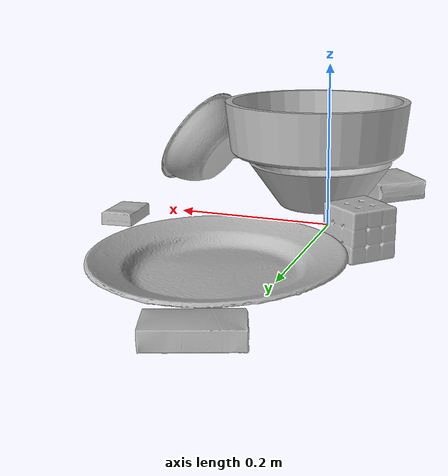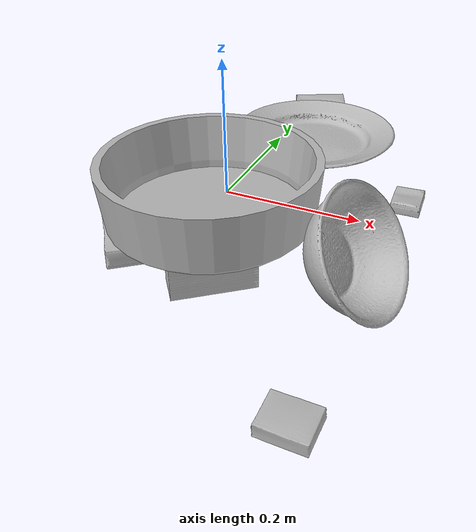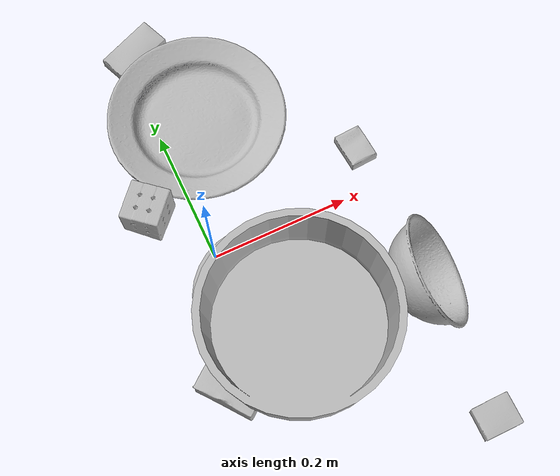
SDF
<sdf version="1.4">
  <world name="default">
    <light name="light1" type="point">
      <pose>0 0 1 0 0 0</pose>
      <diffuse>3 3 3 1</diffuse>
      <specular>3 3 3 1</specular>
    </light>
    <light name="light2" type="point">
      <pose>0 0.5 2 0 0 0</pose>
      <diffuse>1 1 1 1</diffuse>
      <specular>1 1 1 1</specular>
    </light>
    <light name="light3" type="point">
      <pose>0 0.5 2 0 0 0</pose>
      <diffuse>3 3 3 1</diffuse>
      <specular>3 3 3 1</specular>
    </light>
    <scene>
      <ambient>0.7 0.7 0.7</ambient>
    </scene>
    <model name="box1">
      <link name="link_box1">
        <collision name="default">
          <geometry>
            <mesh>
              <uri>model://gelatin_box/collision_meshes/collision.obj</uri>
              <scale>1.0 1.0 1.0</scale>
            </mesh>
          </geometry>
          <surface>
            <friction>
              <ode>
                <mu>0.5</mu>
                <mu2>0.5</mu2>
              </ode>
            </friction>
          <contact>
        <ode>
            <max_vel>0</max_vel>
            <min_depth>0.0001</min_depth>
            <kp>1e8</kp>
        </ode>
    </contact></surface>
        </collision>
        <visual name="default">
          <geometry>
            <mesh>
              <uri>model://gelatin_box/visual_meshes/visual.dae</uri>
              <scale>1.0 1.0 1.0</scale>
            </mesh>
          </geometry>
        </visual>
        <inertial>
          <mass>0.24885821342468262</mass>
          <pose>0.0004319618456065655 0.00011156872642459348 -0.0003640321083366871 -0.0010503721884538221 -0.004755817759936981 0.016440553883063976</pose>
          <inertia>
            <ixx>0.0001756736</ixx>
            <iyy>0.00012548274</iyy>
            <izz>0.00026741438</izz>
            <ixy>0</ixy>
            <ixz>0</ixz>
            <iyz>0</iyz>
          </inertia>
        </inertial>
      </link>
      <pose>-0.04518502950668335 -0.17126549780368805 0.01516831573098898 0.005597437976799453 -0.0073045288459398314 -2.48985067723606</pose>
    </model>
    <model name="box11">
      <link name="link_box11">
        <collision name="default">
          <geometry>
            <mesh>
              <uri>model://pudding_box/collision_meshes/collision.obj</uri>
              <scale>0.5 0.5 0.5</scale>
            </mesh>
          </geometry>
          <surface>
            <friction>
              <ode>
                <mu>0.5</mu>
                <mu2>0.5</mu2>
              </ode>
            </friction>
          <contact>
        <ode>
            <max_vel>0</max_vel>
            <min_depth>0.0001</min_depth>
            <kp>1e8</kp>
        </ode>
    </contact></surface>
        </collision>
        <visual name="default">
          <geometry>
            <mesh>
              <uri>model://pudding_box/visual_meshes/visual.dae</uri>
              <scale>0.5 0.5 0.5</scale>
            </mesh>
          </geometry>
        </visual>
        <inertial>
          <mass>0.031047143042087555</mass>
          <pose>0.00024474109522998333 0.00040339428232982755 -0.0002594413817860186 0.005213102716306955 -0.006603798272123425 0.020079828883677098</pose>
          <inertia>
            <ixx>8.774299e-06</ixx>
            <iyy>5.903411e-06</iyy>
            <izz>1.2957546e-05</izz>
            <ixy>0</ixy>
            <ixz>0</ixz>
            <iyz>0</iyz>
          </inertia>
        </inertial>
      </link>
      <pose>0.24309620261192322 -0.3597951829433441 0.009862900711596012 0.022349774569555874 -0.011390798445064371 1.57955430572418</pose>
    </model>
    <model name="box2">
      <link name="link_box2">
        <collision name="default">
          <geometry>
            <mesh>
              <uri>model://rubiks_cube/collision_meshes/collision.obj</uri>
              <scale>1.0 1.0 1.0</scale>
            </mesh>
          </geometry>
          <surface>
            <friction>
              <ode>
                <mu>0.5</mu>
                <mu2>0.5</mu2>
              </ode>
            </friction>
          <contact>
        <ode>
            <max_vel>0</max_vel>
            <min_depth>0.0001</min_depth>
            <kp>1e8</kp>
        </ode>
    </contact></surface>
        </collision>
        <visual name="default">
          <geometry>
            <mesh>
              <uri>model://rubiks_cube/visual_meshes/visual.dae</uri>
              <scale>1.0 1.0 1.0</scale>
            </mesh>
          </geometry>
        </visual>
        <inertial>
          <mass>0.2106715589761734</mass>
          <pose>2.6721041649580002e-05 5.2569666877388954e-05 -7.264316536748083e-06 -0.05467273700930805 -0.09814071961497198 -0.03445608496414611</pose>
          <inertia>
            <ixx>0.0001164102</ixx>
            <iyy>0.000115867326</iyy>
            <izz>0.00011737483</izz>
            <ixy>0</ixy>
            <ixz>0</ixz>
            <iyz>0</iyz>
          </inertia>
        </inertial>
      </link>
      <pose>-0.05960927903652191 0.09403512626886368 0.028678881004452705 -8.870368112381417e-06 -3.736094588677763e-06 -0.7245439645031693</pose>
    </model>
    <model name="box21">
      <link name="link_box21">
        <collision name="default">
          <geometry>
            <mesh>
              <uri>model://wood_block/collision_meshes/collision.obj</uri>
              <scale>0.5 0.5 0.5</scale>
            </mesh>
          </geometry>
          <surface>
            <friction>
              <ode>
                <mu>0.5</mu>
                <mu2>0.5</mu2>
              </ode>
            </friction>
          <contact>
        <ode>
            <max_vel>0</max_vel>
            <min_depth>0.0001</min_depth>
            <kp>1e8</kp>
        </ode>
    </contact></surface>
        </collision>
        <visual name="default">
          <geometry>
            <mesh>
              <uri>model://wood_block/visual_meshes/visual.dae</uri>
              <scale>0.5 0.5 0.5</scale>
            </mesh>
          </geometry>
        </visual>
        <inertial>
          <mass>0.146076962351799</mass>
          <pose>-2.9066577553749084e-06 -0.000285404734313488 0.00013204291462898254 -0.052208177866913126 -0.0051926955252411455 -0.006861378006552687</pose>
          <inertia>
            <ixx>4.8868267e-05</ixx>
            <iyy>0.00015437487</iyy>
            <izz>0.00015379742</izz>
            <ixy>0</ixy>
            <ixz>0</ixz>
            <iyz>0</iyz>
          </inertia>
        </inertial>
      </link>
      <pose>0.08078547567129135 -0.19961987435817719 0.022629262879490852 -0.005208393453742862 0.005718705710148733 0.663546750445101</pose>
    </model>
    <model name="box3">
      <link name="link_box3">
        <collision name="default">
          <geometry>
            <mesh>
              <uri>model://cracker_box/collision_meshes/collision.obj</uri>
              <scale>0.25 0.25 0.25</scale>
            </mesh>
          </geometry>
          <surface>
            <friction>
              <ode>
                <mu>0.5</mu>
                <mu2>0.5</mu2>
              </ode>
            </friction>
          <contact>
        <ode>
            <max_vel>0</max_vel>
            <min_depth>0.0001</min_depth>
            <kp>1e8</kp>
        </ode>
    </contact></surface>
        </collision>
        <visual name="default">
          <geometry>
            <mesh>
              <uri>model://cracker_box/visual_meshes/visual.dae</uri>
              <scale>0.25 0.25 0.25</scale>
            </mesh>
          </geometry>
        </visual>
        <inertial>
          <mass>0.0398951955139637</mass>
          <pose>0.0002366032567806542 6.358561950037256e-05 -0.0004257383698131889 -0.00031620768741309833 -0.011106487737478729 0.0025467957005107203</pose>
          <inertia>
            <ixx>6.342223e-06</ixx>
            <iyy>1.0472255e-05</iyy>
            <izz>1.494487e-05</izz>
            <ixy>0</ixy>
            <ixz>0</ixz>
            <iyz>0</iyz>
          </inertia>
        </inertial>
      </link>
      <pose>0.24960260093212128 0.06338441371917725 0.009096025489270687 -0.014050559130003684 -0.0050165563415144835 -1.501088938485</pose>
    </model>
    <model name="box31">
      <link name="link_box31">
        <collision name="default">
          <geometry>
            <mesh>
              <uri>model://sugar_box/collision_meshes/collision.obj</uri>
              <scale>0.5 0.5 0.5</scale>
            </mesh>
          </geometry>
          <surface>
            <friction>
              <ode>
                <mu>0.5</mu>
                <mu2>0.5</mu2>
              </ode>
            </friction>
          <contact>
        <ode>
            <max_vel>0</max_vel>
            <min_depth>0.0001</min_depth>
            <kp>1e8</kp>
        </ode>
    </contact></surface>
        </collision>
        <visual name="default">
          <geometry>
            <mesh>
              <uri>model://sugar_box/visual_meshes/visual.dae</uri>
              <scale>0.5 0.5 0.5</scale>
            </mesh>
          </geometry>
        </visual>
        <inertial>
          <mass>0.051384337246418</mass>
          <pose>0.0005171863595023751 1.924554817378521e-05 -0.00018182402709499002 -0.00040462574757428057 0.0010506634050244472 0.0026153787892360275</pose>
          <inertia>
            <ixx>1.070332e-05</ixx>
            <iyy>3.4595334e-05</iyy>
            <izz>4.1414743e-05</izz>
            <ixy>0</ixy>
            <ixz>0</ixz>
            <iyz>0</iyz>
          </inertia>
        </inertial>
      </link>
      <pose>0.01976519636809826 0.3432786762714386 0.011460991576313972 0.020985689001171686 -0.02403817192447135 0.38946076474089714</pose>
    </model>
    <model name="plate1">
      <link name="link_plate1">
        <collision name="default">
          <geometry>
            <mesh>
              <uri>model://plate/collision_meshes/collision.obj</uri>
              <scale>1.0 1.0 1.0</scale>
            </mesh>
          </geometry>
          <surface>
            <friction>
              <ode>
                <mu>0.5</mu>
                <mu2>0.5</mu2>
              </ode>
            </friction>
          <contact>
        <ode>
            <max_vel>0</max_vel>
            <min_depth>0.0001</min_depth>
            <kp>1e8</kp>
        </ode>
    </contact></surface>
        </collision>
        <visual name="default">
          <geometry>
            <mesh>
              <uri>model://plate/visual_meshes/visual.dae</uri>
              <scale>1.0 1.0 1.0</scale>
            </mesh>
          </geometry>
        </visual>
        <inertial>
          <mass>0.18845537304878235</mass>
          <pose>-0.0006044640904292464 0.00027825849247165024 -0.0010561994276940823 0.0022188128524267426 -0.0032254640251278745 0.45260123674794867</pose>
          <inertia>
            <ixx>0.0008815983</ixx>
            <iyy>0.00087316614</iyy>
            <izz>0.001724274</izz>
            <ixy>0</ixy>
            <ixz>0</ixz>
            <iyz>0</iyz>
          </inertia>
        </inertial>
      </link>
      <pose>0.06046050414443016 0.2014465034008026 0.013733061961829662 -7.451040543704596e-08 -8.226620780238619e-07 0.08252254778465999</pose>
    </model>
    <model name="bowl1">
      <link name="link_bowl1">
        <collision name="default">
          <geometry>
            <mesh>
              <uri>model://bowl_a/collision_meshes/collision.obj</uri>
              <scale>1.0 1.0 1.0</scale>
            </mesh>
          </geometry>
          <surface>
            <friction>
              <ode>
                <mu>0.5</mu>
                <mu2>0.5</mu2>
              </ode>
            </friction>
          <contact>
        <ode>
            <max_vel>0</max_vel>
            <min_depth>0.0001</min_depth>
            <kp>1e8</kp>
        </ode>
    </contact></surface>
        </collision>
        <visual name="default">
          <geometry>
            <mesh>
              <uri>model://bowl_a/visual_meshes/visual.dae</uri>
              <scale>1.0 1.0 1.0</scale>
            </mesh>
          </geometry>
        </visual>
        <inertial>
          <mass>0.46761196851730347</mass>
          <pose>0.0002786737459246069 4.731199442176148e-05 -0.0013765295734629035 -0.0009805421566516771 -0.0010938164969012795 -0.19123134440759623</pose>
          <inertia>
            <ixx>0.0013313128</ixx>
            <iyy>0.0013394863</iyy>
            <izz>0.0023677913</izz>
            <ixy>0</ixy>
            <ixz>0</ixz>
            <iyz>0</iyz>
          </inertia>
        </inertial>
      </link>
      <pose>0.03689175099134445 -0.0943794846534729 0.030387260019779205 4.330516730475747e-05 6.990083186123417e-05 -1.0456784047992482</pose>
    </model>
    <model name="plate2">
      <link name="link_plate2">
        <collision name="default">
          <geometry>
            <mesh>
              <uri>model://pan_tefal/collision_meshes/collision.obj</uri>
              <scale>1.0 1.0 1.0</scale>
            </mesh>
          </geometry>
          <surface>
            <friction>
              <ode>
                <mu>0.5</mu>
                <mu2>0.5</mu2>
              </ode>
            </friction>
          <contact>
        <ode>
            <max_vel>0</max_vel>
            <min_depth>0.0001</min_depth>
            <kp>1e8</kp>
        </ode>
    </contact></surface>
        </collision>
        <visual name="default">
          <geometry>
            <mesh>
              <uri>model://pan_tefal/visual_meshes/visual.dae</uri>
              <scale>1.0 1.0 1.0</scale>
            </mesh>
          </geometry>
        </visual>
        <inertial>
          <mass>0.7360396385192871</mass>
          <pose>-0.00018002057913690805 3.2791922421893105e-05 -0.00851493515074253 0.0008190284364517867 -0.0003301440136962699 -0.3318532577359739</pose>
          <inertia>
            <ixx>0.0050808466</ixx>
            <iyy>0.005113603</iyy>
            <izz>0.00935286</izz>
            <ixy>0</ixy>
            <ixz>0</ixz>
            <iyz>0</iyz>
          </inertia>
        </inertial>
      </link>
      <pose>0.05741383880376816 -0.1494683027267456 0.09916488826274872 -0.004621561147657127 0.005970601034778288 1.2438579731159611</pose>
    </model>
    <model name="bowl2">
      <link name="link_bowl2">
        <collision name="default">
          <geometry>
            <mesh>
              <uri>model://bowl/collision_meshes/collision.obj</uri>
              <scale>1.0 1.0 1.0</scale>
            </mesh>
          </geometry>
          <surface>
            <friction>
              <ode>
                <mu>0.5</mu>
                <mu2>0.5</mu2>
              </ode>
            </friction>
          <contact>
        <ode>
            <max_vel>0</max_vel>
            <min_depth>0.0001</min_depth>
            <kp>1e8</kp>
        </ode>
    </contact></surface>
        </collision>
        <visual name="default">
          <geometry>
            <mesh>
              <uri>model://bowl/visual_meshes/visual.dae</uri>
              <scale>1.0 1.0 1.0</scale>
            </mesh>
          </geometry>
        </visual>
        <inertial>
          <mass>0.11974068731069565</mass>
          <pose>0.00020445311383809894 -0.0010302052833139896 -0.0008042640401981771 -0.015764214972767723 0.014546668027170537 0.7140316235505751</pose>
          <inertia>
            <ixx>0.00027505384</ixx>
            <iyy>0.000268908</iyy>
            <izz>0.00046273507</izz>
            <ixy>0</ixy>
            <ixz>0</ixz>
            <iyz>0</iyz>
          </inertia>
        </inertial>
      </link>
      <pose>0.23163364827632904 -0.16059604287147522 0.05806722864508629 -0.8973914537921891 0.5601004080162527 -1.3339925881594477</pose>
    </model>
  <physics type="ode">
      <max_contacts>50</max_contacts>
      <ode>
        <solver>
          <type>quick</type>
          <iters>75</iters>
        </solver>
        <constraints>
          <contact_max_correcting_vel>0</contact_max_correcting_vel>
          <contact_surface_layer>0</contact_surface_layer>
        </constraints>
      </ode>
    </physics></world>
</sdf>
